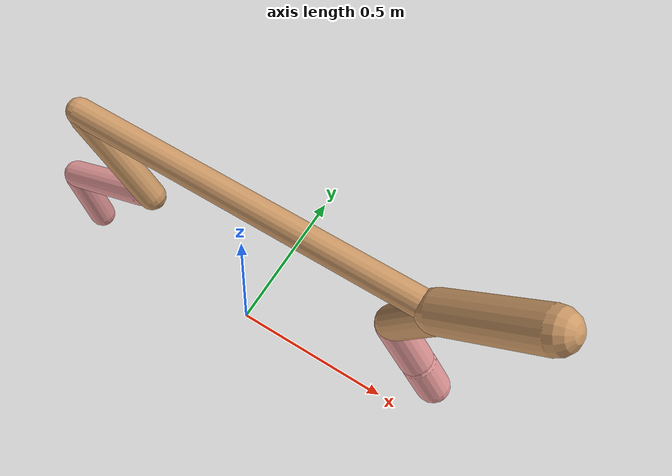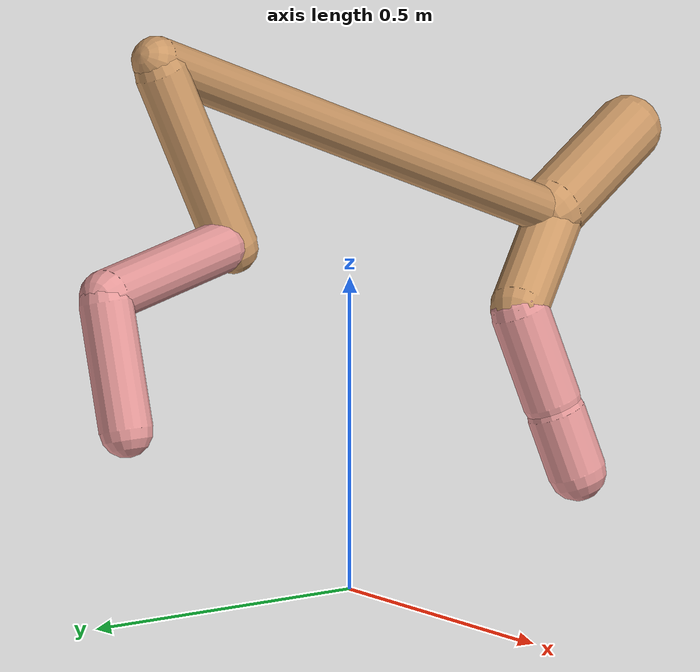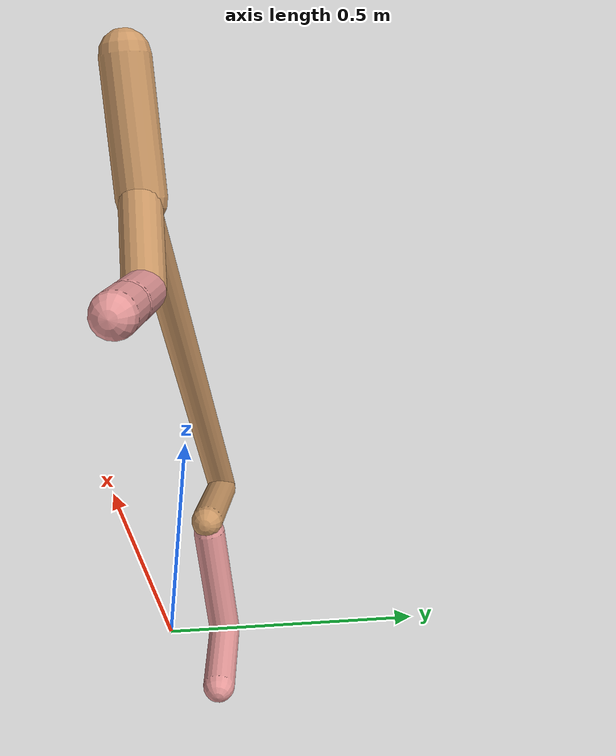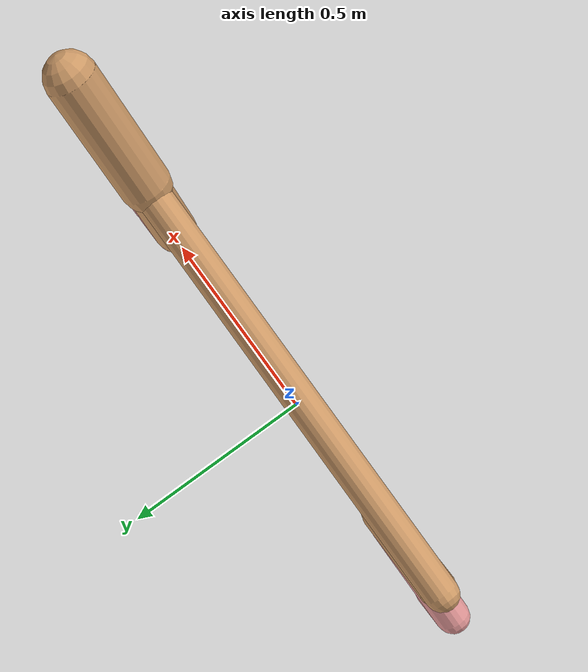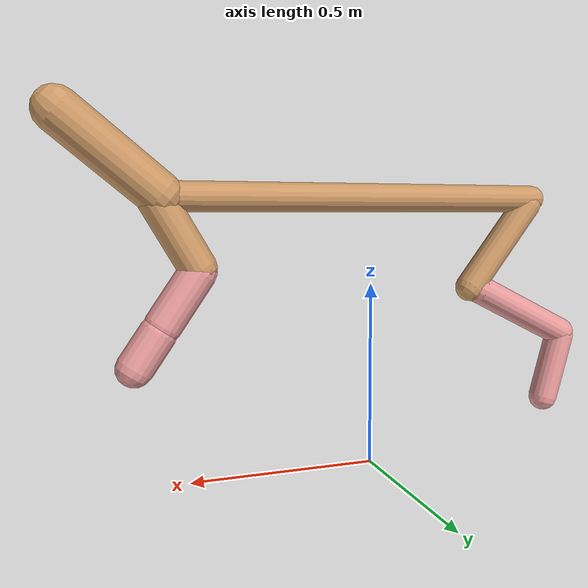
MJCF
<mujoco model="cheetah">
  <compiler angle="radian" coordinate="local" inertiafromgeom="true" settotalmass="14" />
  <default>
    <joint armature=".1" damping=".01" limited="true" solimplimit="0 .8 .03" solreflimit=".02 1" stiffness="8" />
    <geom conaffinity="0" condim="3" contype="1" friction="0.8 .1 .1" rgba="0.8 0.6 .4 1" solimp="0.0 0.8 0.01" solref="0.02 1" />
    <motor ctrllimited="true" ctrlrange="-1 1" />
  </default>
  <size nstack="300000" nuser_geom="1" />
  <option gravity="0 0 -9.81" timestep="0.01" />
  <worldbody>
    <body name="torso" pos="0.0 0.0 0.7318870890875238">
      <joint armature="0" axis="1 0 0" damping="0" limited="false" name="ignorex" pos="0 0 0" stiffness="0" type="slide" />
      <joint armature="0" axis="0 0 1" damping="0" limited="false" name="ignorez" pos="0 0 0" stiffness="0" type="slide" />
      <joint armature="0" axis="0 1 0" damping="0" limited="false" name="ignorey" pos="0 0 0" stiffness="0" type="hinge" />
      <geom fromto="-0.5 0.0 0.0 0.569999538034077 0.0 0.0" name="torso" size="0.03834888464451885" type="capsule" />
      <geom axisangle="0 1 0 .87" name="head" pos="0.669999538034077 0.0 0.1" size="0.057248114974629755 0.15" type="capsule" />

      <body name="bthigh" pos="-.5 0 0">
        <joint axis="0 1 0" damping="6" name="bthigh" pos="0 0 0" range="-.52 1.05" stiffness="240" type="hinge" />
        <geom axisangle="0 1 0 -3.8" name="bthigh" pos="0.10238904719964512 0.0 -0.13310576135953864" size="0.04105332222654264 0.14891832874380587" type="capsule" />
        <body name="bshin" pos="0.16477809439929023 0.0 -0.25621152271907727">
          <joint axis="0 1 0" damping="4.5" name="bshin" pos="0 0 0" range="-.785 .785" stiffness="180" type="hinge" />
          <geom axisangle="0 1 0 -2.03" name="bshin" pos="-0.14362551010869298 0.0 -0.07181275505434649" rgba="0.9 0.6 0.6 1" size="0.04105332222654264 0.15405344352807504" type="capsule" />
          <body name="bfoot" pos="-0.28725102021738597 0.0 -0.14362551010869298">
            <joint axis="0 1 0" damping="3" name="bfoot" pos="0 0 0" range="-.4 .785" stiffness="120" type="hinge" />
            <geom axisangle="0 1 0 -.27" name="bfoot" pos="0.0307505397639689 0.0 -0.09942674523683279" rgba="0.9 0.6 0.6 1" size="0.04105332222654264 0.09654015794426035" type="capsule" />
            <inertial mass="10" />
          </body>
        </body>
      </body>
      <body name="fthigh" pos="0.569999538034077 0.0 0.0">
        <joint axis="0 1 0" damping="4.5" name="fthigh" pos="0 0 0" range="-1.5 0.8" stiffness="180" type="hinge" />
        <geom axisangle="0 1 0 .52" name="fthigh" pos="-0.05371986025384405 0.0 -0.09209118900658979" size="0.04848959001108021 0.10068986720515899" type="capsule" />
        <body name="fshin" pos="-0.1074397205076881 0.0 -0.18418237801317958">
          <joint axis="0 1 0" damping="3" name="fshin" pos="0 0 0" range="-1.2 1.1" stiffness="120" type="hinge" />
          <geom axisangle="0 1 0 -.6" name="fshin" pos="0.04992307203193503 0.0 -0.06912425358267926" rgba="0.9 0.6 0.6 1" size="0.04848959001108021 0.080249067095841" type="capsule" />
          <body name="ffoot" pos="0.09984614406387006 0.0 -0.13824850716535853">
            <joint axis="0 1 0" damping="1.5" name="ffoot" pos="0 0 0" range="-3.1 -0.3" stiffness="60" type="hinge" />
            <geom axisangle="0 1 0 -.6" name="ffoot" pos="0.03580423706044342 0.0 -0.055695479871800874" rgba="0.9 0.6 0.6 1" size="0.04848959001108021 0.05299466695008368" type="capsule" />
            <inertial mass="10" />
          </body>
        </body>
      </body>
    </body>
  </worldbody>
  <actuator>
    <motor gear="120" joint="bthigh" name="bthigh" />
    <motor gear="90" joint="bshin" name="bshin" />
    <motor gear="60" joint="bfoot" name="bfoot" />
    <motor gear="120" joint="fthigh" name="fthigh" />
    <motor gear="60" joint="fshin" name="fshin" />
    <motor gear="30" joint="ffoot" name="ffoot" />
  </actuator>
</mujoco>
